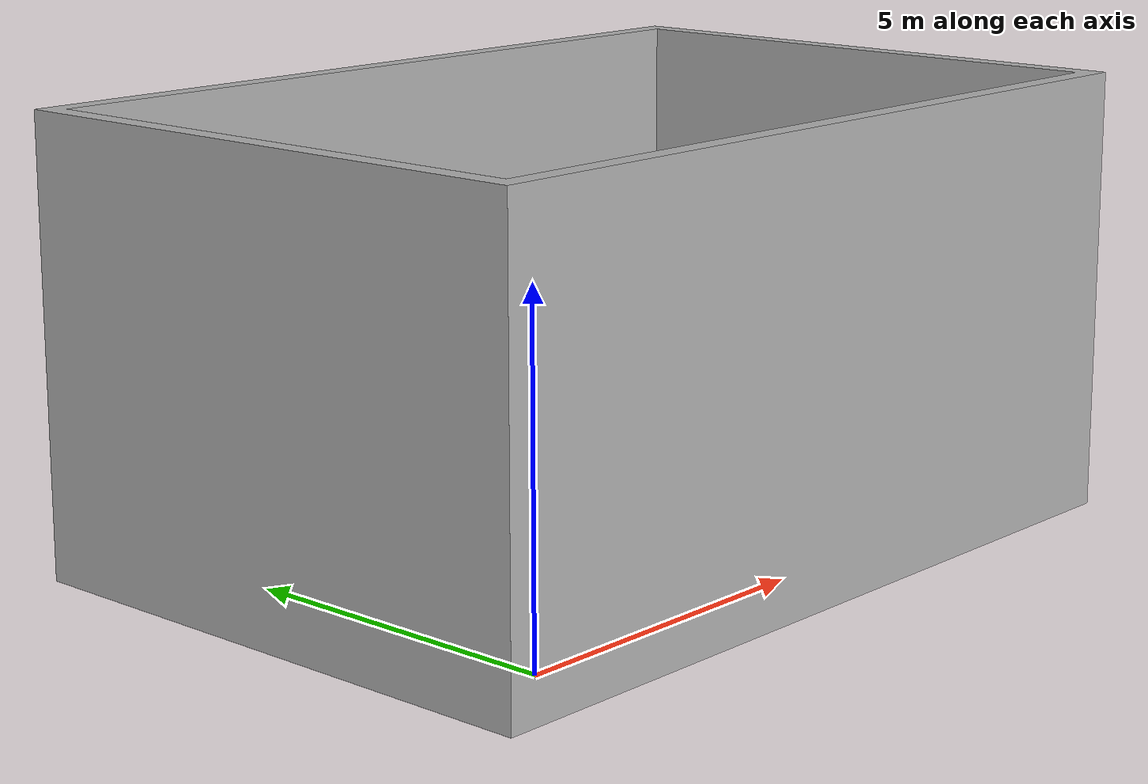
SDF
<?xml version='1.0' encoding='utf-8'?>
<sdf version='1.7'>
  <world name='default'>
    <!-- Physics -->
    <plugin filename="libignition-gazebo-physics-system.so" name="ignition::gazebo::systems::Physics">
    </plugin>

    <!-- Forwards simulation state to the GUI -->
    <plugin filename="libignition-gazebo-scene-broadcaster-system.so" name="ignition::gazebo::systems::SceneBroadcaster">
    </plugin>

    <!-- Processes user commands, like translate and create -->
    <plugin filename="libignition-gazebo-user-commands-system.so" name="ignition::gazebo::systems::UserCommands">
    </plugin>

    <!-- Generates rendering sensor data -->
    <plugin filename="libignition-gazebo-sensors-system.so" name="ignition::gazebo::systems::Sensors">
      <render_engine>ogre</render_engine>
    </plugin>

    <plugin filename="libignition-gazebo-imu-system.so" name="ignition::gazebo::systems::Imu">
    </plugin>

    <light type='directional' name='direct_light'>
      <cast_shadows>true</cast_shadows>
      <pose>7.4 3.6 10 0 0 0</pose>
      <diffuse>1.0 1.0 1.0 1</diffuse>
      <specular>0.5 0.5 0.5 1</specular>
      <attenuation>
        <range>1000</range>
        <constant>0.9</constant>
        <linear>0.01</linear>
        <quadratic>0.001</quadratic>
      </attenuation>
      <direction>0 0 -1</direction>
    </light>

    <model name='rmul_2026'>
      <include>
        <uri>model://rmul_2026</uri>
      </include>
      <pose>3.5 3.5 -2.5 0 0 0</pose>
      <static>true</static>
    </model>
  </world>
</sdf>

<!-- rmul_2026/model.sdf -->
<sdf version='1.6'>
  <model name='rmul_2026'>
    <link name='body'>
      <pose frame=''>1.0 -0.5 2.65 -1.5705 -0 0</pose>
      <self_collide>0</self_collide>
      <kinematic>0</kinematic>
      <gravity>1</gravity>
      <visual name='visual'>
        <geometry>
          <mesh>
            <uri>model://rmul_2026/meshes/rmul_2026.stl</uri>
            <scale>0.001 0.001 0.001</scale>
          </mesh>
        </geometry>
        <material>
          <ambient>0.3 0.3 0.3 1</ambient>
          <diffuse>0.7 0.7 0.7 1</diffuse>
          <specular>0.01 0.01 0.01 1</specular>
          <emissive>0 0 0 1</emissive>
        </material>
      </visual>
      <collision name='collision'>
        <laser_retro>0</laser_retro>
        <max_contacts>10</max_contacts>
        <geometry>
          <mesh>
            <uri>model://rmul_2026/meshes/rmul_2026.stl</uri>
            <scale>0.001 0.001 0.001</scale>
          </mesh>
        </geometry>
      </collision>
    </link>
    <static>true</static>
  </model>
</sdf>
